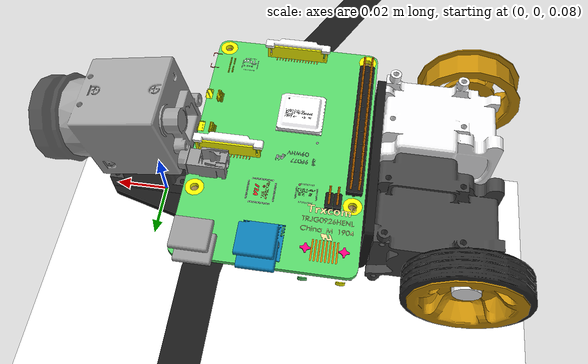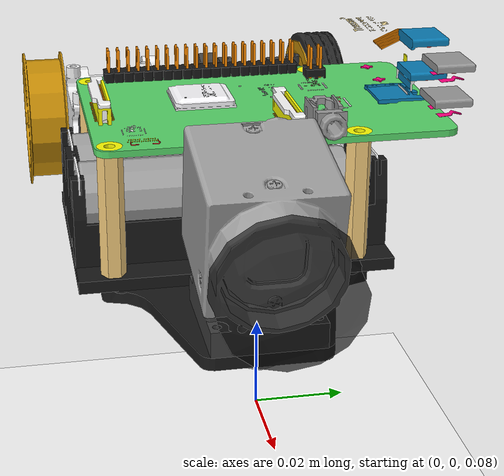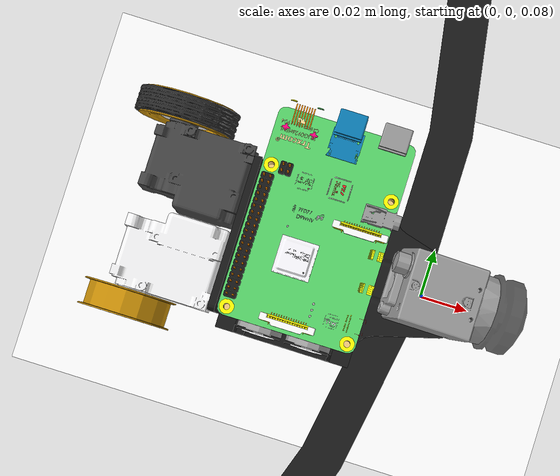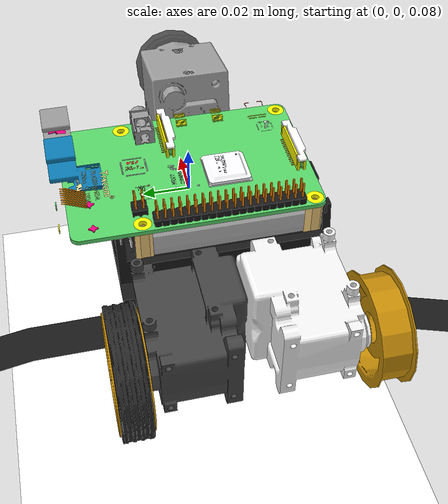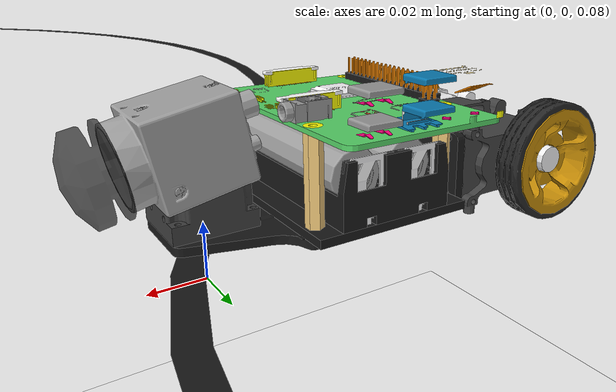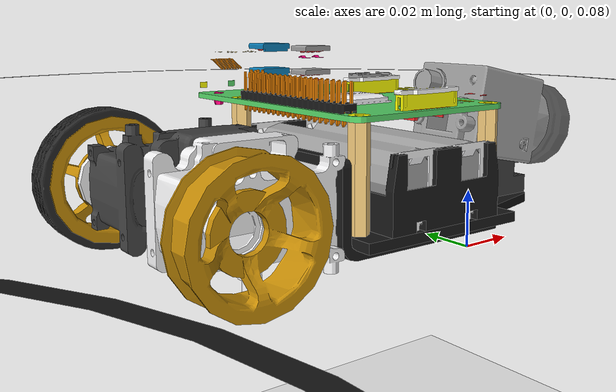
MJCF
<mujoco model="scene">
	<include file="robot.xml" />
	<compiler angle="radian" autolimits="true" />
	<visual>
		<headlight diffuse="0.6 0.6 0.6" ambient="0.3 0.3 0.3" specular="0 0 0" />
		<rgba haze="0.15 0.25 0.35 1" />
		<global azimuth="150" elevation="-20" />
	</visual>
	<worldbody>
		<light pos="0 0 3" dir="0 0 -1" directional="false" />
		<body name="line_1">
			<inertial fullinertia="0.1988877 0.14004928 0.33893697 0.02763432 0.0 0.0" pos="0.5476744812555792 0.14724567289739865 -3.999999999999991e-05" mass="0.4027552916770061" />
			<geom type="mesh" pos="0.339206 -0.293445 -9e-05" quat="1.0 0.0 0.0 0.0" contype="0" conaffinity="0" material="Powder_Coat_(Black)" mesh="line_1_mesh" />
		</body>
		<geom name="floor" size="0 0 .125" type="plane" material="groundplane" conaffinity="15" condim="3" />
	</worldbody>
	<asset>
		<material name="Powder_Coat_(Black)" specular="0.5" shininess="0.5" rgba="0.098039 0.098039 0.098039 1.0" />
		<mesh name="line_1_mesh" file="line_1_mesh.obj" />
		<texture type="skybox" builtin="gradient" rgb1="0.3 0.5 0.7" rgb2="0 0 0" width="512" height="3072" />
		<material name="groundplane" rgba="1 1 1 1" texuniform="true" texrepeat="5 5" reflectance="0.2" />
	</asset>
	<equality />
	<actuator />
</mujoco>

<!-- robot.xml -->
<mujoco model="robot">

  <compiler angle="radian" autolimits="true" />

  <option integrator="implicit" timestep="0.002" cone="pyramidal" solver="Newton" />

  <worldbody>

    <body name="main_plate_v3_1" pos="0 0 0.1">
      <freejoint/>
      <inertial fullinertia="9.25e-06 1.727e-05 2.415e-05 -0.0 2.38e-06 0.0" pos="-0.0520986918755481 2.319349956536598e-10 0.0019025856309235877" mass="0.025394005829932346" />

      <body name="camera_plate_v1_1">

        <inertial fullinertia="5.8e-07 6.4e-07 9.5e-07 0.0 5e-08 0.0" pos="-0.00109472732732795 2.9481332664005324e-09 0.0066766458202167644" mass="0.007015333441506587" />

        <body name="ball_wheel_v1_1">

          <inertial fullinertia="1.71e-06 1.71e-06 1.71e-06 -0.0 0.0 -0.0" pos="2.2019546309460777e-19 8.881784197001253e-18 -4.163336342344337e-18" mass="0.03879238608652743" />

          <joint name="Revolute 4_joint" type="ball" pos="-0.0 0.0 -0.0" />

          <geom pos="-0.0 -0.052195 -0.0025" quat="0.0 0.0 0.0 1.0" material="Stainless_Steel_-_Satin" mesh="ball_wheel_v1_1_mesh" class="visual" />

          <geom pos="-0.0 -0.052195 -0.0025" quat="0.0 0.0 0.0 1.0" mesh="ball_wheel_v1_1_mesh" class="collision" />

        </body>

        <body name="camera_v1_1">
          <camera name="cam" pos="0.03 0 0.0215" euler="1.56 -1.36 0"  fovy="90"  resolution="500 500"/>

          <inertial fullinertia="1.182e-05 2.295e-05 2.253e-05 1.4e-07 2.44e-06 -8e-08" pos="0.008939511053923061 7.874321397218462e-05 0.02597546374124492" mass="0.08553411992895192" />

          <geom pos="-0.023405 -0.029036 -0.025415" quat="0.703574 0.070593 0.070593 0.703574" mesh="camera_v1_1_mesh_0" material="Glass_-_Heavy_Color" class="visual" />

          <geom pos="-0.023405 -0.029036 -0.025415" quat="0.703574 0.070593 0.070593 0.703574" mesh="camera_v1_1_mesh_1" material="Steel_-_Satin" class="visual" />

          <geom pos="-0.023405 -0.029036 -0.025415" quat="0.703574 0.070593 0.070593 0.703574" mesh="camera_v1_1_mesh_0" class="collision" />

          <geom pos="-0.023405 -0.029036 -0.025415" quat="0.703574 0.070593 0.070593 0.703574" mesh="camera_v1_1_mesh_1" class="collision" />

        </body>

        <geom pos="-0.008305 -0.024005 -0.0445" quat="0.0 0.0 0.0 1.0" material="PA_12_-_Nylon_-_PA_603-CF_(with_EOS_P_3D_Printers)" mesh="camera_plate_v1_1_mesh" class="visual" />

      </body>

      <body name="motor_v1_1">

        <inertial fullinertia="3.399e-05 4.059e-05 5.146e-05 -5.53e-06 -0.0 -0.0" pos="-0.10069792270987482 -0.016718535990259818 0.011950040611941897" mass="0.22728577731179683" />

        <body name="wheel_v1_1">

          <inertial fullinertia="1.37e-06 2.58e-06 1.37e-06 -0.0 0.0 0.0" pos="-0.11269560520522001 -0.03927549067001272 0.01194995383001105" mass="0.00889310201596848" />

          <joint name="rw_joint" type="hinge" pos="-0.112696 -0.0369 0.01195" axis="0.0 1.0 -0.0" />

          <geom pos="-0.112696 -0.039241 0.01195" quat="0.0 -0.0 0.0 1.0" mesh="wheel_v1_1_mesh_0" material="Polymide_(Kapton)" class="visual" />

          <geom pos="-0.112696 -0.039241 0.01195" quat="0.0 -0.0 0.0 1.0" mesh="wheel_v1_1_mesh_1" material="Rubber_-_Soft" class="visual" />

          <geom pos="-0.112696 -0.039241 0.01195" quat="0.0 -0.0 0.0 1.0" mesh="wheel_v1_1_mesh_0" class="collision" />

          <geom pos="-0.112696 -0.039241 0.01195" quat="0.0 -0.0 0.0 1.0" mesh="wheel_v1_1_mesh_1" class="collision" />

        </body>

        <geom pos="-0.112696 -0.0 0.01195" quat="0.5 0.5 -0.5 0.5" mesh="motor_v1_1_mesh_0" material="Aluminum_-_Polished" class="visual" />

        <geom pos="-0.112696 -0.0 0.01195" quat="0.5 0.5 -0.5 0.5" mesh="motor_v1_1_mesh_1" material="Aluminum_-_Anodized_Glossy_(Grey)" class="visual" />

      </body>

      <body name="motor_v1_2">

        <inertial fullinertia="3.399e-05 4.059e-05 5.146e-05 5.53e-06 0.0 -0.0" pos="-0.10069792270987488 0.018718535990259834 0.011899959388058576" mass="0.22728577731179683" />

        <body name="wheel_v1_2">

          <inertial fullinertia="1.37e-06 2.58e-06 1.37e-06 0.0 -0.0 0.0" pos="-0.11269560520522004 0.04127549067001274 0.011900046169989425" mass="0.00889310201596848" />

          <joint name="lw_joint" type="hinge" pos="-0.112696 0.0389 0.0119"  axis="-0.0 1.0 -0.0" />

          <geom pos="-0.112696 0.041241 0.0119" quat="-0.0 -0.0 1.0 -0.0" mesh="wheel_v1_2_mesh_0" material="Polymide_(Kapton)" class="visual" />

          <geom pos="-0.112696 0.041241 0.0119" quat="-0.0 -0.0 1.0 -0.0" mesh="wheel_v1_2_mesh_1" material="Rubber_-_Soft" class="visual" />

          <geom pos="-0.112696 0.041241 0.0119" quat="-0.0 -0.0 1.0 -0.0" mesh="wheel_v1_2_mesh_0" class="collision" />

          <geom pos="-0.112696 0.041241 0.0119" quat="-0.0 -0.0 1.0 -0.0" mesh="wheel_v1_2_mesh_1" class="collision" />

        </body>

        <geom pos="-0.112696 0.002 0.0119" quat="0.5 -0.5 0.5 0.5" mesh="motor_v1_2_mesh_0" material="Aluminum_-_Polished" class="visual" />

        <geom pos="-0.112696 0.002 0.0119" quat="0.5 -0.5 0.5 0.5" mesh="motor_v1_2_mesh_1" material="Aluminum_-_Anodized_Glossy_(Grey)" class="visual" />

      </body>

      <body name="controller_v2_1">

        <inertial fullinertia="0.0001402 7.78e-05 0.00015104 1.11e-06 1e-08 -3.499e-05" pos="-0.048822788167997164 0.023546379220334746 0.03131983420637534" mass="0.13912139089522532" />

        <body name="battery_v1_1">

          <inertial fullinertia="0.00011244 4.229e-05 0.00014039 0.0 0.0 4.6e-07" pos="-0.048686277228095404 -0.002632283409780784 0.015716066126842797" mass="0.2846841852951556" />

          <geom pos="-0.058686 -0.035 0.01625" quat="0.5 -0.5 -0.5 -0.5" mesh="battery_v1_1_mesh_0" material="Opaque(25,25,25)" class="visual" />

          <geom pos="-0.058686 -0.035 0.01625" quat="0.5 -0.5 -0.5 -0.5" mesh="battery_v1_1_mesh_1" material="Opaque(245,245,246)" class="visual" />

          <geom pos="-0.058686 -0.035 0.01625" quat="0.5 -0.5 -0.5 -0.5" mesh="battery_v1_1_mesh_2" material="Steel_-_Satin" class="visual" />

          <geom pos="-0.058686 -0.035 0.01625" quat="0.5 -0.5 -0.5 -0.5" mesh="battery_v1_1_mesh_0" class="collision" />

          <geom pos="-0.058686 -0.035 0.01625" quat="0.5 -0.5 -0.5 -0.5" mesh="battery_v1_1_mesh_1" class="collision" />

          <geom pos="-0.058686 -0.035 0.01625" quat="0.5 -0.5 -0.5 -0.5" mesh="battery_v1_1_mesh_2" class="collision" />

        </body>

        <geom pos="-0.051804 0.126691 -0.0512" quat="0.707107 0.0 0.0 0.707107" mesh="controller_v2_1_mesh_0" material="Carbon_Fiber_-_Plain" class="visual" />

        <geom pos="-0.051804 0.126691 -0.0512" quat="0.707107 0.0 0.0 0.707107" mesh="controller_v2_1_mesh_1" material="Brass_-_Polished" class="visual" />

        <geom pos="-0.051804 0.126691 -0.0512" quat="0.707107 0.0 0.0 0.707107" mesh="controller_v2_1_mesh_2" material="Opaque(247,224,153)" class="visual" />

        <geom pos="-0.051804 0.126691 -0.0512" quat="0.707107 0.0 0.0 0.707107" mesh="controller_v2_1_mesh_3" material="Opaque(229,229,229)" class="visual" />

        <geom pos="-0.051804 0.126691 -0.0512" quat="0.707107 0.0 0.0 0.707107" mesh="controller_v2_1_mesh_4" material="Opaque(10,125,181)" class="visual" />

        <geom pos="-0.051804 0.126691 -0.0512" quat="0.707107 0.0 0.0 0.707107" mesh="controller_v2_1_mesh_5" material="Opaque(247,66,66)" class="visual" />

        <geom pos="-0.051804 0.126691 -0.0512" quat="0.707107 0.0 0.0 0.707107" mesh="controller_v2_1_mesh_6" material="Opaque(153,153,153)" class="visual" />

        <geom pos="-0.051804 0.126691 -0.0512" quat="0.707107 0.0 0.0 0.707107" mesh="controller_v2_1_mesh_7" material="Opaque(255,0,128)" class="visual" />

        <geom pos="-0.051804 0.126691 -0.0512" quat="0.707107 0.0 0.0 0.707107" mesh="controller_v2_1_mesh_8" material="Opaque(255,43,43)" class="visual" />

        <geom pos="-0.051804 0.126691 -0.0512" quat="0.707107 0.0 0.0 0.707107" mesh="controller_v2_1_mesh_9" material="Opaque(137,89,86)" class="visual" />

        <geom pos="-0.051804 0.126691 -0.0512" quat="0.707107 0.0 0.0 0.707107" mesh="controller_v2_1_mesh_10" material="Opaque(145,145,150)" class="visual" />

        <geom pos="-0.051804 0.126691 -0.0512" quat="0.707107 0.0 0.0 0.707107" mesh="controller_v2_1_mesh_11" material="Opaque(76,76,76)" class="visual" />

        <geom pos="-0.051804 0.126691 -0.0512" quat="0.707107 0.0 0.0 0.707107" mesh="controller_v2_1_mesh_12" material="Opaque(252,251,255)" class="visual" />

        <geom pos="-0.051804 0.126691 -0.0512" quat="0.707107 0.0 0.0 0.707107" mesh="controller_v2_1_mesh_13" material="Opaque(255,255,255)" class="visual" />

        <geom pos="-0.051804 0.126691 -0.0512" quat="0.707107 0.0 0.0 0.707107" mesh="controller_v2_1_mesh_14" material="Opaque(255,193,144)" class="visual" />

        <geom pos="-0.051804 0.126691 -0.0512" quat="0.707107 0.0 0.0 0.707107" mesh="controller_v2_1_mesh_15" material="Plastic_-_Glossy_(Black)" class="visual" />

        <geom pos="-0.051804 0.126691 -0.0512" quat="0.707107 0.0 0.0 0.707107" mesh="controller_v2_1_mesh_16" material="Opaque(255,140,0)" class="visual" />

        <geom pos="-0.051804 0.126691 -0.0512" quat="0.707107 0.0 0.0 0.707107" mesh="controller_v2_1_mesh_17" material="Opaque(87,214,105)" class="visual" />

        <geom pos="-0.051804 0.126691 -0.0512" quat="0.707107 0.0 0.0 0.707107" mesh="controller_v2_1_mesh_18" material="Opaque(202,209,238)" class="visual" />

        <geom pos="-0.051804 0.126691 -0.0512" quat="0.707107 0.0 0.0 0.707107" mesh="controller_v2_1_mesh_19" material="Opaque(255,255,0)" class="visual" />

      </body>

      <geom pos="-0.10369 -0.024005 0.01195" quat="0.0 0.0 -0.0 1.0" material="Carbon_Fiber_-_Plain" mesh="main_plate_v3_1_mesh" class="visual" />

    </body>

  </worldbody>

  <default>

    <default class="visual">

      <geom group="2" type="mesh" contype="0" conaffinity="0" />

    </default>

    <default class="collision">

      <geom group="3" type="mesh" />

    </default>

  </default>

  <asset>

    <material name="Stainless_Steel_-_Satin" specular="0.5" shininess="0.5" rgba="0.796078 0.796078 0.796078 1.0" />

    <mesh name="ball_wheel_v1_1_mesh" file="ball_wheel_v1_1_mesh.obj" />

    <material name="Steel_-_Satin" specular="0.5" shininess="0.5" rgba="0.627451 0.627451 0.627451 1.0" />

    <material name="Opaque(245,245,246)" specular="0.5" shininess="0.5" rgba="0.960784 0.960784 0.964706 1.0" />

    <material name="Opaque(25,25,25)" specular="0.5" shininess="0.5" rgba="0.098039 0.098039 0.098039 1.0" />

    <mesh name="battery_v1_1_mesh_0" file="battery_v1_1_mesh_0.obj" />

    <mesh name="battery_v1_1_mesh_1" file="battery_v1_1_mesh_1.obj" />

    <mesh name="battery_v1_1_mesh_2" file="battery_v1_1_mesh_2.obj" />

    <material name="PA_12_-_Nylon_-_PA_603-CF_(with_EOS_P_3D_Printers)" specular="0.5" shininess="0.5" rgba="0.247059 0.247059 0.247059 1.0" />

    <mesh name="camera_plate_v1_1_mesh" file="camera_plate_v1_1_mesh.obj" />

    <material name="Glass_-_Heavy_Color" specular="0.5" shininess="0.5" rgba="0.098039 0.098039 0.098039 0.7" />

    <mesh name="camera_v1_1_mesh_0" file="camera_v1_1_mesh_0.obj" />

    <mesh name="camera_v1_1_mesh_1" file="camera_v1_1_mesh_1.obj" />

    <material name="Opaque(255,255,0)" specular="0.5" shininess="0.5" rgba="1.000000 1.000000 0.000000 1.0" />

    <material name="Opaque(202,209,238)" specular="0.5" shininess="0.5" rgba="0.792157 0.819608 0.933333 1.0" />

    <material name="Opaque(87,214,105)" specular="0.5" shininess="0.5" rgba="0.341176 0.839216 0.411765 1.0" />

    <material name="Opaque(255,140,0)" specular="0.5" shininess="0.5" rgba="1.000000 0.549020 0.000000 1.0" />

    <material name="Plastic_-_Glossy_(Black)" specular="0.5" shininess="0.5" rgba="0.098039 0.098039 0.098039 1.0" />

    <material name="Opaque(255,193,144)" specular="0.5" shininess="0.5" rgba="1.000000 0.756863 0.564706 1.0" />

    <material name="Opaque(255,255,255)" specular="0.5" shininess="0.5" rgba="1.000000 1.000000 1.000000 1.0" />

    <material name="Opaque(252,251,255)" specular="0.5" shininess="0.5" rgba="0.988235 0.984314 1.000000 1.0" />

    <material name="Opaque(76,76,76)" specular="0.5" shininess="0.5" rgba="0.298039 0.298039 0.298039 1.0" />

    <material name="Opaque(145,145,150)" specular="0.5" shininess="0.5" rgba="0.568627 0.568627 0.588235 1.0" />

    <material name="Opaque(137,89,86)" specular="0.5" shininess="0.5" rgba="0.537255 0.349020 0.337255 1.0" />

    <material name="Opaque(255,43,43)" specular="0.5" shininess="0.5" rgba="1.000000 0.168627 0.168627 1.0" />

    <material name="Opaque(255,0,128)" specular="0.5" shininess="0.5" rgba="1.000000 0.000000 0.501961 1.0" />

    <material name="Opaque(153,153,153)" specular="0.5" shininess="0.5" rgba="0.600000 0.600000 0.600000 1.0" />

    <material name="Opaque(247,66,66)" specular="0.5" shininess="0.5" rgba="0.968627 0.258824 0.258824 1.0" />

    <material name="Opaque(10,125,181)" specular="0.5" shininess="0.5" rgba="0.039216 0.490196 0.709804 1.0" />

    <material name="Opaque(229,229,229)" specular="0.5" shininess="0.5" rgba="0.898039 0.898039 0.898039 1.0" />

    <material name="Opaque(247,224,153)" specular="0.5" shininess="0.5" rgba="0.968627 0.878431 0.600000 1.0" />

    <material name="Brass_-_Polished" specular="0.5" shininess="0.5" rgba="0.952941 0.796078 0.486275 1.0" />

    <material name="Carbon_Fiber_-_Plain" specular="0.5" shininess="0.5" rgba="0.098039 0.098039 0.098039 1.0" />

    <mesh name="controller_v2_1_mesh_0" file="controller_v2_1_mesh_0.obj" />

    <mesh name="controller_v2_1_mesh_1" file="controller_v2_1_mesh_1.obj" />

    <mesh name="controller_v2_1_mesh_2" file="controller_v2_1_mesh_2.obj" />

    <mesh name="controller_v2_1_mesh_3" file="controller_v2_1_mesh_3.obj" />

    <mesh name="controller_v2_1_mesh_4" file="controller_v2_1_mesh_4.obj" />

    <mesh name="controller_v2_1_mesh_5" file="controller_v2_1_mesh_5.obj" />

    <mesh name="controller_v2_1_mesh_6" file="controller_v2_1_mesh_6.obj" />

    <mesh name="controller_v2_1_mesh_7" file="controller_v2_1_mesh_7.obj" />

    <mesh name="controller_v2_1_mesh_8" file="controller_v2_1_mesh_8.obj" />

    <mesh name="controller_v2_1_mesh_9" file="controller_v2_1_mesh_9.obj" />

    <mesh name="controller_v2_1_mesh_10" file="controller_v2_1_mesh_10.obj" />

    <mesh name="controller_v2_1_mesh_11" file="controller_v2_1_mesh_11.obj" />

    <mesh name="controller_v2_1_mesh_12" file="controller_v2_1_mesh_12.obj" />

    <mesh name="controller_v2_1_mesh_13" file="controller_v2_1_mesh_13.obj" />

    <mesh name="controller_v2_1_mesh_14" file="controller_v2_1_mesh_14.obj" />

    <mesh name="controller_v2_1_mesh_15" file="controller_v2_1_mesh_15.obj" />

    <mesh name="controller_v2_1_mesh_16" file="controller_v2_1_mesh_16.obj" />

    <mesh name="controller_v2_1_mesh_17" file="controller_v2_1_mesh_17.obj" />

    <mesh name="controller_v2_1_mesh_18" file="controller_v2_1_mesh_18.obj" />

    <mesh name="controller_v2_1_mesh_19" file="controller_v2_1_mesh_19.obj" />

    <mesh name="main_plate_v3_1_mesh" file="main_plate_v3_1_mesh.obj" />

    <material name="Aluminum_-_Anodized_Glossy_(Grey)" specular="0.5" shininess="0.5" rgba="0.266667 0.266667 0.266667 1.0" />

    <material name="Aluminum_-_Polished" specular="0.5" shininess="0.5" rgba="0.960784 0.960784 0.964706 1.0" />

    <mesh name="motor_v1_1_mesh_0" file="motor_v1_1_mesh_0.obj" />

    <mesh name="motor_v1_1_mesh_1" file="motor_v1_1_mesh_1.obj" />

    <mesh name="motor_v1_2_mesh_0" file="motor_v1_2_mesh_0.obj" />

    <mesh name="motor_v1_2_mesh_1" file="motor_v1_2_mesh_1.obj" />

    <material name="Rubber_-_Soft" specular="0.5" shininess="0.5" rgba="0.152941 0.152941 0.152941 1.0" />

    <material name="Polymide_(Kapton)" specular="0.5" shininess="0.5" rgba="0.784314 0.556863 0.027451 1.0" />

    <mesh name="wheel_v1_1_mesh_0" file="wheel_v1_1_mesh_0.obj" />

    <mesh name="wheel_v1_1_mesh_1" file="wheel_v1_1_mesh_1.obj" />

    <mesh name="wheel_v1_2_mesh_0" file="wheel_v1_2_mesh_0.obj" />

    <mesh name="wheel_v1_2_mesh_1" file="wheel_v1_2_mesh_1.obj" />

  </asset>

<equality />
<actuator>
<velocity name="rw" joint="rw_joint"  ctrlrange="-100 100" forcerange="-3.5 3.5" kv="0.01" />
<velocity name="lw" ctrlrange="-100 100" joint="lw_joint" forcerange="-3.5 3.5"  kv="0.01" />
</actuator></mujoco>
